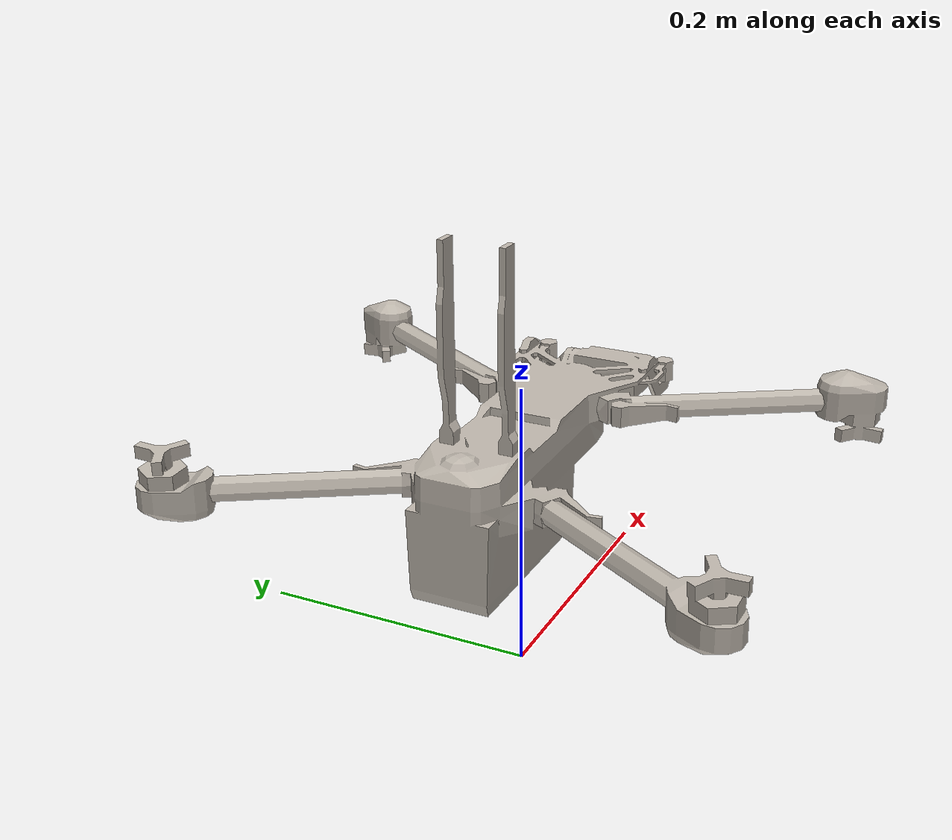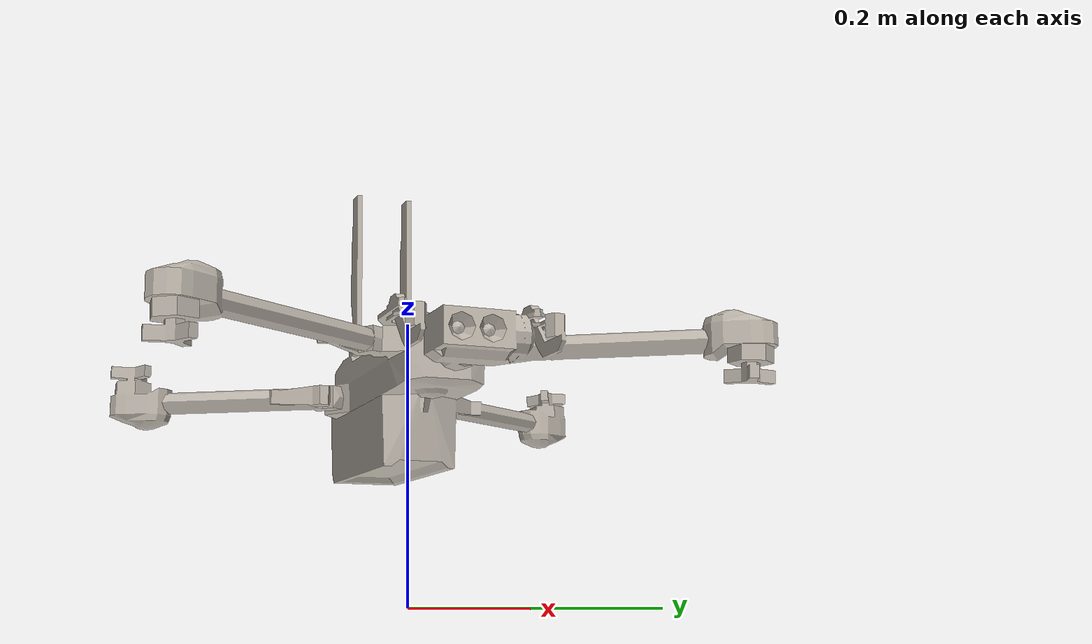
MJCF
<mujoco model="Skydio X2 (neurofly)">
  <compiler autolimits="true"/>

  <option timestep="0.01" density="1.225" viscosity="1.8e-5"/>

  <default>
    <default class="x2">
      <geom mass="0"/>
      <motor ctrlrange="0 13"/>
      <mesh scale="0.01 0.01 0.01"/>
      <default class="visual">
        <geom group="2" type="mesh" contype="0" conaffinity="0"/>
      </default>
      <default class="collision">
        <geom group="3" type="box"/>
        <default class="rotor">
          <geom type="ellipsoid" size=".13 .13 .01"/>
        </default>
      </default>
      <site group="5"/>
    </default>
  </default>

  <asset>
    <texture name="x2" type="2d" file="X2_texture.png"/>
    <material name="x2" texture="x2"/>
    <material name="invisible" rgba="0 0 0 0"/>
    <mesh name="x2" class="x2" file="X2_noprops.obj"/>
  </asset>

  <worldbody>
    <light name="spotlight" mode="targetbodycom" target="x2" pos="0 -1 2"/>
    <body name="x2" pos="0 0 0.1" childclass="x2">
      <freejoint/>
      <camera name="track" pos="-1 0 .5" xyaxes="0 -1 0 1 0 2" mode="trackcom"/>
      <camera name="eye_left" pos="0.158 -0.0018 0.0646" fovy="157.0" xyaxes="0.9397 -0.3420 0.0000 0 0 1"/>
      <camera name="eye_right" pos="0.158 -0.0182 0.0646" fovy="157.0" xyaxes="-0.9397 -0.3420 0.0000 0 0 1"/>
      <site name="imu" pos="0 0 .02"/>
      <!-- quat "1 1 0 0" = oryginalne "0 0 1 1" obrócone o 180° wokół z -->
      <geom material="x2" mesh="x2" class="visual" quat="1 1 0 0"/>
      <geom class="collision" size=".06 .027 .02" pos="-.04 0 .02"/>
      <geom class="collision" size=".06 .027 .02" pos="-.04 0 .06"/>
      <geom class="collision" size=".05 .027 .02" pos=".07 0 .065"/>
      <geom class="collision" size=".023 .017 .01" pos=".137 -.008 .065" quat="1 0 0 1"/>
      <geom name="rotor1" class="rotor" pos=".14 .18 .05" mass=".25"/>
      <geom name="rotor2" class="rotor" pos=".14 -.18 .05" mass=".25"/>
      <geom name="rotor3" class="rotor" pos="-.14 -.18 .08" mass=".25"/>
      <geom name="rotor4" class="rotor" pos="-.14 .18 .08" mass=".25"/>
      <geom size=".16 .04 .02" pos="0 0 0.02" type="ellipsoid" mass=".325" class="visual" material="invisible"/>
      <site name="thrust1" pos=".14 .18 .05"/>
      <site name="thrust2" pos=".14 -.18 .05"/>
      <site name="thrust3" pos="-.14 -.18 .08"/>
      <site name="thrust4" pos="-.14 .18 .08"/>
      <site name="prop1" pos=".1435 .1886 .0479"/>
      <site name="prop2" pos=".1435 -.1879 .0479"/>
      <site name="prop3" pos="-.1417 -.1764 .0793"/>
      <site name="prop4" pos="-.1417 .1766 .0793"/>
    </body>
  </worldbody>

  <actuator>
    <motor class="x2" name="thrust1" site="thrust1" gear="0 0 1 0 0 -.0201"/>
    <motor class="x2" name="thrust2" site="thrust2" gear="0 0 1 0 0 .0201"/>
    <motor class="x2" name="thrust3" site="thrust3" gear="0 0 1 0 0 -.0201"/>
    <motor class="x2" name="thrust4" site="thrust4" gear="0 0 1 0 0 .0201"/>
  </actuator>

  <sensor>
    <gyro name="body_gyro" site="imu"/>
    <accelerometer name="body_linacc" site="imu"/>
    <framequat name="body_quat" objtype="site" objname="imu"/>
  </sensor>

  <keyframe>
    <key name="hover" qpos="0 0 .3 1 0 0 0" ctrl="3.2495625 3.2495625 3.2495625 3.2495625"/>
  </keyframe>
</mujoco>
